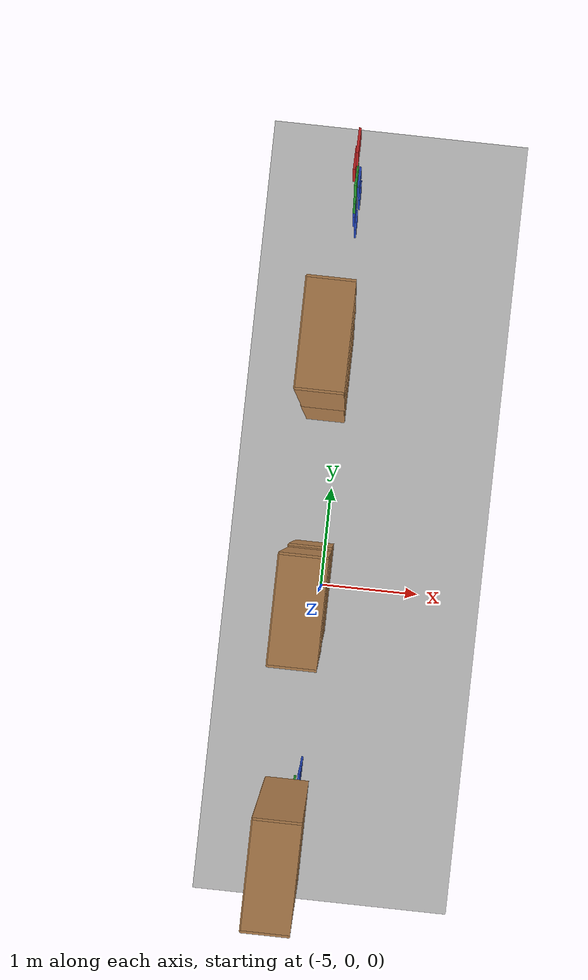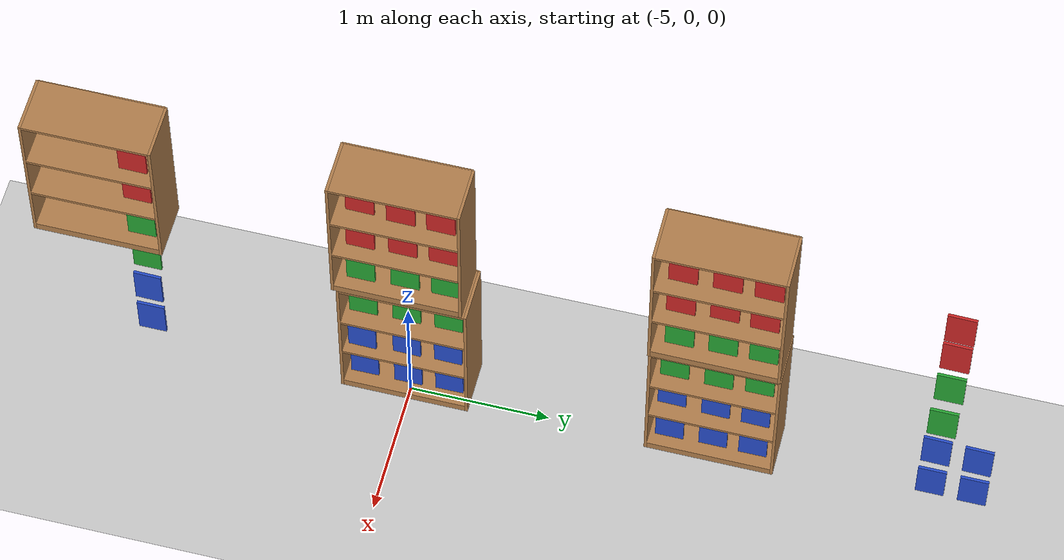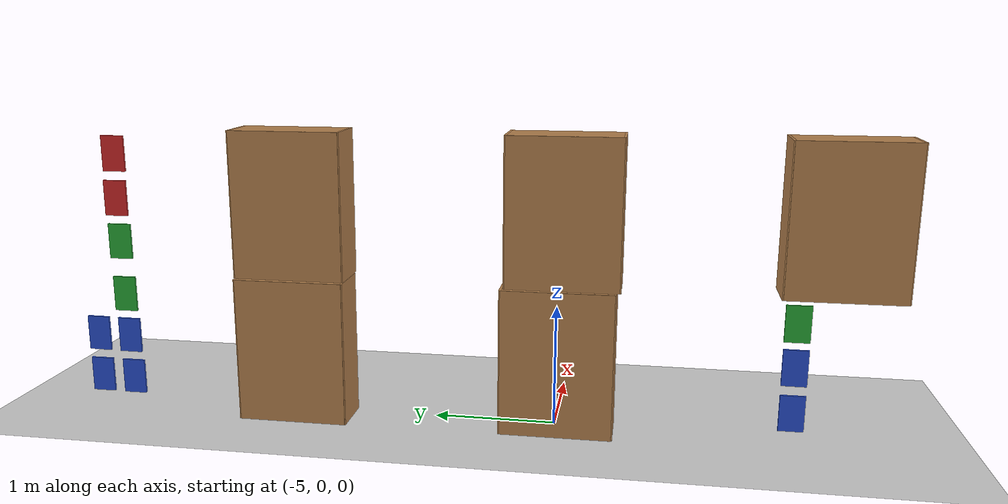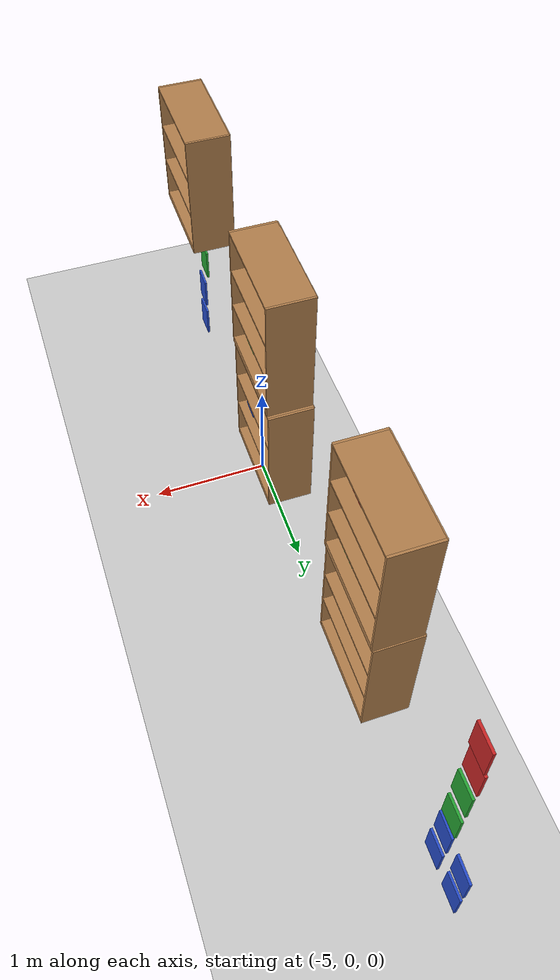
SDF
<sdf version="1.6">
 <world name="default">
  <model name="ground_plane">
   <static>1</static>
   <link name="link">
    <collision name="collision">
     <geometry><plane><normal>0 0 1</normal><size>100 100</size></plane></geometry>
     <surface><friction><ode><mu>100</mu><mu2>50</mu2></ode></friction></surface>
    </collision>
    <visual name="visual">
     <cast_shadows>0</cast_shadows>
     <geometry><plane><normal>0 0 1</normal><size>100 100</size></plane></geometry>
     <material>
      <script><uri>file://media/materials/scripts/gazebo.material</uri><name>Gazebo/Grey</name></script>
     </material>
    </visual>
   </link>
  </model>
  <model name="bookshelf_0_clone_0">
   <static>1</static>
   <link name="link">
    <inertial><mass>1</mass></inertial>
    <collision name="back">
     <pose>0 0.005 0.6 0 -0 0</pose>
     <geometry><box><size>0.9 0.01 1.2</size></box></geometry>
    </collision>
    <visual name="visual1">
     <pose>0 0.005 0.6 0 -0 0</pose>
     <geometry><box><size>0.9 0.01 1.2</size></box></geometry>
     <material>
      <script><uri>file://media/materials/scripts/gazebo.material</uri><name>Gazebo/Wood</name></script>
     </material>
    </visual>
    <collision name="left_side">
     <pose>0.45 -0.195 0.6 0 -0 0</pose>
     <geometry><box><size>0.02 0.4 1.2</size></box></geometry>
    </collision>
    <visual name="visual2">
     <pose>0.45 -0.195 0.6 0 -0 0</pose>
     <geometry><box><size>0.02 0.4 1.2</size></box></geometry>
     <material>
      <script><uri>file://media/materials/scripts/gazebo.material</uri><name>Gazebo/Wood</name></script>
     </material>
    </visual>
    <collision name="right_side">
     <pose>-0.45 -0.195 0.6 0 -0 0</pose>
     <geometry><box><size>0.02 0.4 1.2</size></box></geometry>
    </collision>
    <visual name="visual3">
     <pose>-0.45 -0.195 0.6 0 -0 0</pose>
     <geometry><box><size>0.02 0.4 1.2</size></box></geometry>
     <material>
      <script><uri>file://media/materials/scripts/gazebo.material</uri><name>Gazebo/Wood</name></script>
     </material>
    </visual>
    <collision name="bottom">
     <pose>0 -0.195 0.03 0 -0 0</pose>
     <geometry><box><size>0.88 0.4 0.06</size></box></geometry>
    </collision>
    <visual name="visual4">
     <pose>0 -0.195 0.03 0 -0 0</pose>
     <geometry><box><size>0.88 0.4 0.06</size></box></geometry>
     <material>
      <script><uri>file://media/materials/scripts/gazebo.material</uri><name>Gazebo/Wood</name></script>
     </material>
    </visual>
    <collision name="top">
     <pose>0 -0.195 1.19 0 -0 0</pose>
     <geometry><box><size>0.88 0.4 0.02</size></box></geometry>
    </collision>
    <visual name="visual5">
     <pose>0 -0.195 1.19 0 -0 0</pose>
     <geometry><box><size>0.88 0.4 0.02</size></box></geometry>
     <material>
      <script><uri>file://media/materials/scripts/gazebo.material</uri><name>Gazebo/Wood</name></script>
     </material>
    </visual>
    <collision name="low_shelf">
     <pose>0 -0.195 0.43 0 -0 0</pose>
     <geometry><box><size>0.88 0.4 0.02</size></box></geometry>
    </collision>
    <visual name="visual6">
     <pose>0 -0.195 0.43 0 -0 0</pose>
     <geometry><box><size>0.88 0.4 0.02</size></box></geometry>
     <material>
      <script><uri>file://media/materials/scripts/gazebo.material</uri><name>Gazebo/Wood</name></script>
     </material>
    </visual>
    <collision name="high_shelf">
     <pose>0 -0.195 0.8 0 -0 0</pose>
     <geometry><box><size>0.88 0.4 0.02</size></box></geometry>
    </collision>
    <visual name="visual7">
     <pose>0 -0.195 0.8 0 -0 0</pose>
     <geometry><box><size>0.88 0.4 0.02</size></box></geometry>
     <material>
      <script><uri>file://media/materials/scripts/gazebo.material</uri><name>Gazebo/Wood</name></script>
     </material>
    </visual>
   </link>
   <pose>-5.30935 -0.025093 0 0 -0 1.5697</pose>
  </model>
  <model name="bookshelf_0_clone_0_clone">
   <static>1</static>
   <link name="link">
    <inertial><mass>1</mass></inertial>
    <collision name="back">
     <pose>0 0.005 0.6 0 -0 0</pose>
     <geometry><box><size>0.9 0.01 1.2</size></box></geometry>
    </collision>
    <visual name="visual1">
     <pose>0 0.005 0.6 0 -0 0</pose>
     <geometry><box><size>0.9 0.01 1.2</size></box></geometry>
     <material>
      <script><uri>file://media/materials/scripts/gazebo.material</uri><name>Gazebo/Wood</name></script>
     </material>
    </visual>
    <collision name="left_side">
     <pose>0.45 -0.195 0.6 0 -0 0</pose>
     <geometry><box><size>0.02 0.4 1.2</size></box></geometry>
    </collision>
    <visual name="visual2">
     <pose>0.45 -0.195 0.6 0 -0 0</pose>
     <geometry><box><size>0.02 0.4 1.2</size></box></geometry>
     <material>
      <script><uri>file://media/materials/scripts/gazebo.material</uri><name>Gazebo/Wood</name></script>
     </material>
    </visual>
    <collision name="right_side">
     <pose>-0.45 -0.195 0.6 0 -0 0</pose>
     <geometry><box><size>0.02 0.4 1.2</size></box></geometry>
    </collision>
    <visual name="visual3">
     <pose>-0.45 -0.195 0.6 0 -0 0</pose>
     <geometry><box><size>0.02 0.4 1.2</size></box></geometry>
     <material>
      <script><uri>file://media/materials/scripts/gazebo.material</uri><name>Gazebo/Wood</name></script>
     </material>
    </visual>
    <collision name="bottom">
     <pose>0 -0.195 0.03 0 -0 0</pose>
     <geometry><box><size>0.88 0.4 0.06</size></box></geometry>
    </collision>
    <visual name="visual4">
     <pose>0 -0.195 0.03 0 -0 0</pose>
     <geometry><box><size>0.88 0.4 0.06</size></box></geometry>
     <material>
      <script><uri>file://media/materials/scripts/gazebo.material</uri><name>Gazebo/Wood</name></script>
     </material>
    </visual>
    <collision name="top">
     <pose>0 -0.195 1.19 0 -0 0</pose>
     <geometry><box><size>0.88 0.4 0.02</size></box></geometry>
    </collision>
    <visual name="visual5">
     <pose>0 -0.195 1.19 0 -0 0</pose>
     <geometry><box><size>0.88 0.4 0.02</size></box></geometry>
     <material>
      <script><uri>file://media/materials/scripts/gazebo.material</uri><name>Gazebo/Wood</name></script>
     </material>
    </visual>
    <collision name="low_shelf">
     <pose>0 -0.195 0.43 0 -0 0</pose>
     <geometry><box><size>0.88 0.4 0.02</size></box></geometry>
    </collision>
    <visual name="visual6">
     <pose>0 -0.195 0.43 0 -0 0</pose>
     <geometry><box><size>0.88 0.4 0.02</size></box></geometry>
     <material>
      <script><uri>file://media/materials/scripts/gazebo.material</uri><name>Gazebo/Wood</name></script>
     </material>
    </visual>
    <collision name="high_shelf">
     <pose>0 -0.195 0.8 0 -0 0</pose>
     <geometry><box><size>0.88 0.4 0.02</size></box></geometry>
    </collision>
    <visual name="visual7">
     <pose>0 -0.195 0.8 0 -0 0</pose>
     <geometry><box><size>0.88 0.4 0.02</size></box></geometry>
     <material>
      <script><uri>file://media/materials/scripts/gazebo.material</uri><name>Gazebo/Wood</name></script>
     </material>
    </visual>
   </link>
   <pose>-5.33454 2.15943 0 0 -0 1.5697</pose>
  </model>
  <model name="bookshelf_0_clone_0_clone_1_clone_0">
   <static>1</static>
   <link name="link">
    <inertial><mass>1</mass></inertial>
    <collision name="back">
     <pose>0 0.005 0.6 0 -0 0</pose>
     <geometry><box><size>0.9 0.01 1.2</size></box></geometry>
    </collision>
    <visual name="visual1">
     <pose>0 0.005 0.6 0 -0 0</pose>
     <geometry><box><size>0.9 0.01 1.2</size></box></geometry>
     <material>
      <script><uri>file://media/materials/scripts/gazebo.material</uri><name>Gazebo/Wood</name></script>
     </material>
    </visual>
    <collision name="left_side">
     <pose>0.45 -0.195 0.6 0 -0 0</pose>
     <geometry><box><size>0.02 0.4 1.2</size></box></geometry>
    </collision>
    <visual name="visual2">
     <pose>0.45 -0.195 0.6 0 -0 0</pose>
     <geometry><box><size>0.02 0.4 1.2</size></box></geometry>
     <material>
      <script><uri>file://media/materials/scripts/gazebo.material</uri><name>Gazebo/Wood</name></script>
     </material>
    </visual>
    <collision name="right_side">
     <pose>-0.45 -0.195 0.6 0 -0 0</pose>
     <geometry><box><size>0.02 0.4 1.2</size></box></geometry>
    </collision>
    <visual name="visual3">
     <pose>-0.45 -0.195 0.6 0 -0 0</pose>
     <geometry><box><size>0.02 0.4 1.2</size></box></geometry>
     <material>
      <script><uri>file://media/materials/scripts/gazebo.material</uri><name>Gazebo/Wood</name></script>
     </material>
    </visual>
    <collision name="bottom">
     <pose>0 -0.195 0.03 0 -0 0</pose>
     <geometry><box><size>0.88 0.4 0.06</size></box></geometry>
    </collision>
    <visual name="visual4">
     <pose>0 -0.195 0.03 0 -0 0</pose>
     <geometry><box><size>0.88 0.4 0.06</size></box></geometry>
     <material>
      <script><uri>file://media/materials/scripts/gazebo.material</uri><name>Gazebo/Wood</name></script>
     </material>
    </visual>
    <collision name="top">
     <pose>0 -0.195 1.19 0 -0 0</pose>
     <geometry><box><size>0.88 0.4 0.02</size></box></geometry>
    </collision>
    <visual name="visual5">
     <pose>0 -0.195 1.19 0 -0 0</pose>
     <geometry><box><size>0.88 0.4 0.02</size></box></geometry>
     <material>
      <script><uri>file://media/materials/scripts/gazebo.material</uri><name>Gazebo/Wood</name></script>
     </material>
    </visual>
    <collision name="low_shelf">
     <pose>0 -0.195 0.43 0 -0 0</pose>
     <geometry><box><size>0.88 0.4 0.02</size></box></geometry>
    </collision>
    <visual name="visual6">
     <pose>0 -0.195 0.43 0 -0 0</pose>
     <geometry><box><size>0.88 0.4 0.02</size></box></geometry>
     <material>
      <script><uri>file://media/materials/scripts/gazebo.material</uri><name>Gazebo/Wood</name></script>
     </material>
    </visual>
    <collision name="high_shelf">
     <pose>0 -0.195 0.8 0 -0 0</pose>
     <geometry><box><size>0.88 0.4 0.02</size></box></geometry>
    </collision>
    <visual name="visual7">
     <pose>0 -0.195 0.8 0 -0 0</pose>
     <geometry><box><size>0.88 0.4 0.02</size></box></geometry>
     <material>
      <script><uri>file://media/materials/scripts/gazebo.material</uri><name>Gazebo/Wood</name></script>
     </material>
    </visual>
   </link>
   <pose>-5.32334 2.15341 1.21067 0 -0 1.5697</pose>
  </model>
  <model name="bookshelf_0_clone_0_clone_1_clone_0_clone">
   <static>1</static>
   <link name="link">
    <inertial><mass>1</mass></inertial>
    <collision name="back">
     <pose>0 0.005 0.6 0 -0 0</pose>
     <geometry><box><size>0.9 0.01 1.2</size></box></geometry>
    </collision>
    <visual name="visual1">
     <pose>0 0.005 0.6 0 -0 0</pose>
     <geometry><box><size>0.9 0.01 1.2</size></box></geometry>
     <material>
      <script><uri>file://media/materials/scripts/gazebo.material</uri><name>Gazebo/Wood</name></script>
     </material>
    </visual>
    <collision name="left_side">
     <pose>0.45 -0.195 0.6 0 -0 0</pose>
     <geometry><box><size>0.02 0.4 1.2</size></box></geometry>
    </collision>
    <visual name="visual2">
     <pose>0.45 -0.195 0.6 0 -0 0</pose>
     <geometry><box><size>0.02 0.4 1.2</size></box></geometry>
     <material>
      <script><uri>file://media/materials/scripts/gazebo.material</uri><name>Gazebo/Wood</name></script>
     </material>
    </visual>
    <collision name="right_side">
     <pose>-0.45 -0.195 0.6 0 -0 0</pose>
     <geometry><box><size>0.02 0.4 1.2</size></box></geometry>
    </collision>
    <visual name="visual3">
     <pose>-0.45 -0.195 0.6 0 -0 0</pose>
     <geometry><box><size>0.02 0.4 1.2</size></box></geometry>
     <material>
      <script><uri>file://media/materials/scripts/gazebo.material</uri><name>Gazebo/Wood</name></script>
     </material>
    </visual>
    <collision name="bottom">
     <pose>0 -0.195 0.03 0 -0 0</pose>
     <geometry><box><size>0.88 0.4 0.06</size></box></geometry>
    </collision>
    <visual name="visual4">
     <pose>0 -0.195 0.03 0 -0 0</pose>
     <geometry><box><size>0.88 0.4 0.06</size></box></geometry>
     <material>
      <script><uri>file://media/materials/scripts/gazebo.material</uri><name>Gazebo/Wood</name></script>
     </material>
    </visual>
    <collision name="top">
     <pose>0 -0.195 1.19 0 -0 0</pose>
     <geometry><box><size>0.88 0.4 0.02</size></box></geometry>
    </collision>
    <visual name="visual5">
     <pose>0 -0.195 1.19 0 -0 0</pose>
     <geometry><box><size>0.88 0.4 0.02</size></box></geometry>
     <material>
      <script><uri>file://media/materials/scripts/gazebo.material</uri><name>Gazebo/Wood</name></script>
     </material>
    </visual>
    <collision name="low_shelf">
     <pose>0 -0.195 0.43 0 -0 0</pose>
     <geometry><box><size>0.88 0.4 0.02</size></box></geometry>
    </collision>
    <visual name="visual6">
     <pose>0 -0.195 0.43 0 -0 0</pose>
     <geometry><box><size>0.88 0.4 0.02</size></box></geometry>
     <material>
      <script><uri>file://media/materials/scripts/gazebo.material</uri><name>Gazebo/Wood</name></script>
     </material>
    </visual>
    <collision name="high_shelf">
     <pose>0 -0.195 0.8 0 -0 0</pose>
     <geometry><box><size>0.88 0.4 0.02</size></box></geometry>
    </collision>
    <visual name="visual7">
     <pose>0 -0.195 0.8 0 -0 0</pose>
     <geometry><box><size>0.88 0.4 0.02</size></box></geometry>
     <material>
      <script><uri>file://media/materials/scripts/gazebo.material</uri><name>Gazebo/Wood</name></script>
     </material>
    </visual>
   </link>
   <pose>-5.30537 -0.057137 1.21067 0 -0 1.5697</pose>
  </model>
  <model name="bookshelf_0_clone_0_clone_1_clone_0_clone_0">
   <static>1</static>
   <link name="link">
    <inertial><mass>1</mass></inertial>
    <collision name="back">
     <pose>0 0.005 0.6 0 -0 0</pose>
     <geometry><box><size>0.9 0.01 1.2</size></box></geometry>
    </collision>
    <visual name="visual1">
     <pose>0 0.005 0.6 0 -0 0</pose>
     <geometry><box><size>0.9 0.01 1.2</size></box></geometry>
     <material>
      <script><uri>file://media/materials/scripts/gazebo.material</uri><name>Gazebo/Wood</name></script>
     </material>
    </visual>
    <collision name="left_side">
     <pose>0.45 -0.195 0.6 0 -0 0</pose>
     <geometry><box><size>0.02 0.4 1.2</size></box></geometry>
    </collision>
    <visual name="visual2">
     <pose>0.45 -0.195 0.6 0 -0 0</pose>
     <geometry><box><size>0.02 0.4 1.2</size></box></geometry>
     <material>
      <script><uri>file://media/materials/scripts/gazebo.material</uri><name>Gazebo/Wood</name></script>
     </material>
    </visual>
    <collision name="right_side">
     <pose>-0.45 -0.195 0.6 0 -0 0</pose>
     <geometry><box><size>0.02 0.4 1.2</size></box></geometry>
    </collision>
    <visual name="visual3">
     <pose>-0.45 -0.195 0.6 0 -0 0</pose>
     <geometry><box><size>0.02 0.4 1.2</size></box></geometry>
     <material>
      <script><uri>file://media/materials/scripts/gazebo.material</uri><name>Gazebo/Wood</name></script>
     </material>
    </visual>
    <collision name="bottom">
     <pose>0 -0.195 0.03 0 -0 0</pose>
     <geometry><box><size>0.88 0.4 0.06</size></box></geometry>
    </collision>
    <visual name="visual4">
     <pose>0 -0.195 0.03 0 -0 0</pose>
     <geometry><box><size>0.88 0.4 0.06</size></box></geometry>
     <material>
      <script><uri>file://media/materials/scripts/gazebo.material</uri><name>Gazebo/Wood</name></script>
     </material>
    </visual>
    <collision name="top">
     <pose>0 -0.195 1.19 0 -0 0</pose>
     <geometry><box><size>0.88 0.4 0.02</size></box></geometry>
    </collision>
    <visual name="visual5">
     <pose>0 -0.195 1.19 0 -0 0</pose>
     <geometry><box><size>0.88 0.4 0.02</size></box></geometry>
     <material>
      <script><uri>file://media/materials/scripts/gazebo.material</uri><name>Gazebo/Wood</name></script>
     </material>
    </visual>
    <collision name="low_shelf">
     <pose>0 -0.195 0.43 0 -0 0</pose>
     <geometry><box><size>0.88 0.4 0.02</size></box></geometry>
    </collision>
    <visual name="visual6">
     <pose>0 -0.195 0.43 0 -0 0</pose>
     <geometry><box><size>0.88 0.4 0.02</size></box></geometry>
     <material>
      <script><uri>file://media/materials/scripts/gazebo.material</uri><name>Gazebo/Wood</name></script>
     </material>
    </visual>
    <collision name="high_shelf">
     <pose>0 -0.195 0.8 0 -0 0</pose>
     <geometry><box><size>0.88 0.4 0.02</size></box></geometry>
    </collision>
    <visual name="visual7">
     <pose>0 -0.195 0.8 0 -0 0</pose>
     <geometry><box><size>0.88 0.4 0.02</size></box></geometry>
     <material>
      <script><uri>file://media/materials/scripts/gazebo.material</uri><name>Gazebo/Wood</name></script>
     </material>
    </visual>
   </link>
   <pose>-5.28921 -2.17241 1.21067 0 -0 1.5697</pose>
  </model>
  <model name="bluecube_0_clone_clone_9_clone_11_clone_clone_11">
   <static>1</static>
   <link name="link">
    <pose>0 0 0.21 0 -0 0</pose>
    <collision name="collision"><geometry><box><size>0.2 0.02 0.3</size></box></geometry></collision>
    <visual name="visual">
     <geometry><box><size>0.2 0.02 0.3</size></box></geometry>
     <material>
      <script><uri>file://media/materials/scripts/gazebo.material</uri><name>Gazebo/Blue</name></script>
     </material>
    </visual>
   </link>
   <pose>-5.0024 -1.89029 0 0 -0 1.57146</pose>
  </model>
  <model name="bluecube_0_clone_clone_9_clone_11_clone_clone_12">
   <static>1</static>
   <link name="link">
    <pose>0 0 0.21 0 -0 0</pose>
    <collision name="collision"><geometry><box><size>0.2 0.02 0.3</size></box></geometry></collision>
    <visual name="visual">
     <geometry><box><size>0.2 0.02 0.3</size></box></geometry>
     <material>
      <script><uri>file://media/materials/scripts/gazebo.material</uri><name>Gazebo/Blue</name></script>
     </material>
    </visual>
   </link>
   <pose>-5.02173 -0.335053 0 0 -0 1.57146</pose>
  </model>
  <model name="bluecube_0_clone_clone_9_clone_11_clone_clone_13">
   <static>1</static>
   <link name="link">
    <pose>0 0 0.21 0 -0 0</pose>
    <collision name="collision"><geometry><box><size>0.2 0.02 0.3</size></box></geometry></collision>
    <visual name="visual">
     <geometry><box><size>0.2 0.02 0.3</size></box></geometry>
     <material>
      <script><uri>file://media/materials/scripts/gazebo.material</uri><name>Gazebo/Blue</name></script>
     </material>
    </visual>
   </link>
   <pose>-5.01812 -0.019743 0 0 -0 1.57146</pose>
  </model>
  <model name="bluecube_0_clone_clone_9_clone_11_clone_clone_14">
   <static>1</static>
   <link name="link">
    <pose>0 0 0.21 0 -0 0</pose>
    <collision name="collision"><geometry><box><size>0.2 0.02 0.3</size></box></geometry></collision>
    <visual name="visual">
     <geometry><box><size>0.2 0.02 0.3</size></box></geometry>
     <material>
      <script><uri>file://media/materials/scripts/gazebo.material</uri><name>Gazebo/Blue</name></script>
     </material>
    </visual>
   </link>
   <pose>-5.0247 0.276606 0 0 -0 1.57146</pose>
  </model>
  <model name="bluecube_0_clone_clone_9_clone_11_clone_clone_15">
   <static>1</static>
   <link name="link">
    <pose>0 0 0.21 0 -0 0</pose>
    <collision name="collision"><geometry><box><size>0.2 0.02 0.3</size></box></geometry></collision>
    <visual name="visual">
     <geometry><box><size>0.2 0.02 0.3</size></box></geometry>
     <material>
      <script><uri>file://media/materials/scripts/gazebo.material</uri><name>Gazebo/Blue</name></script>
     </material>
    </visual>
   </link>
   <pose>-5.03969 1.85817 0 0 -0 1.57146</pose>
  </model>
  <model name="bluecube_0_clone_clone_9_clone_11_clone_clone_16">
   <static>1</static>
   <link name="link">
    <pose>0 0 0.21 0 -0 0</pose>
    <collision name="collision"><geometry><box><size>0.2 0.02 0.3</size></box></geometry></collision>
    <visual name="visual">
     <geometry><box><size>0.2 0.02 0.3</size></box></geometry>
     <material>
      <script><uri>file://media/materials/scripts/gazebo.material</uri><name>Gazebo/Blue</name></script>
     </material>
    </visual>
   </link>
   <pose>-5.04505 2.16746 0 0 -0 1.57146</pose>
  </model>
  <model name="bluecube_0_clone_clone_9_clone_11_clone_clone_17">
   <static>1</static>
   <link name="link">
    <pose>0 0 0.21 0 -0 0</pose>
    <collision name="collision"><geometry><box><size>0.2 0.02 0.3</size></box></geometry></collision>
    <visual name="visual">
     <geometry><box><size>0.2 0.02 0.3</size></box></geometry>
     <material>
      <script><uri>file://media/materials/scripts/gazebo.material</uri><name>Gazebo/Blue</name></script>
     </material>
    </visual>
   </link>
   <pose>-5.04087 2.45195 0 0 -0 1.57146</pose>
  </model>
  <model name="bluecube_0_clone_clone_9_clone_11_clone_clone_18">
   <static>1</static>
   <link name="link">
    <pose>0 0 0.21 0 -0 0</pose>
    <collision name="collision"><geometry><box><size>0.2 0.02 0.3</size></box></geometry></collision>
    <visual name="visual">
     <geometry><box><size>0.2 0.02 0.3</size></box></geometry>
     <material>
      <script><uri>file://media/materials/scripts/gazebo.material</uri><name>Gazebo/Blue</name></script>
     </material>
    </visual>
   </link>
   <pose>-5.03935 3.70712 0 0 -0 1.57146</pose>
  </model>
  <model name="bluecube_0_clone_clone_9_clone_11_clone_clone_19">
   <static>1</static>
   <link name="link">
    <pose>0 0 0.21 0 -0 0</pose>
    <collision name="collision"><geometry><box><size>0.2 0.02 0.3</size></box></geometry></collision>
    <visual name="visual">
     <geometry><box><size>0.2 0.02 0.3</size></box></geometry>
     <material>
      <script><uri>file://media/materials/scripts/gazebo.material</uri><name>Gazebo/Blue</name></script>
     </material>
    </visual>
   </link>
   <pose>-5.0324 4.00447 0 0 -0 1.57146</pose>
  </model>
  <model name="bluecube_0_clone_clone_10_clone_clone_21_clone_clone_12">
   <static>1</static>
   <link name="link">
    <pose>0 0 0.21 0 -0 0</pose>
    <collision name="collision"><geometry><box><size>0.2 0.02 0.3</size></box></geometry></collision>
    <visual name="visual">
     <geometry><box><size>0.2 0.02 0.3</size></box></geometry>
     <material>
      <script><uri>file://media/materials/scripts/gazebo.material</uri><name>Gazebo/Blue</name></script>
     </material>
    </visual>
   </link>
   <pose>-5.00479 -1.88869 0.38097 0 -0 1.5507</pose>
  </model>
  <model name="bluecube_0_clone_clone_10_clone_clone_21_clone_clone_13">
   <static>1</static>
   <link name="link">
    <pose>0 0 0.21 0 -0 0</pose>
    <collision name="collision"><geometry><box><size>0.2 0.02 0.3</size></box></geometry></collision>
    <visual name="visual">
     <geometry><box><size>0.2 0.02 0.3</size></box></geometry>
     <material>
      <script><uri>file://media/materials/scripts/gazebo.material</uri><name>Gazebo/Blue</name></script>
     </material>
    </visual>
   </link>
   <pose>-4.99981 -0.338779 0.38097 0 -0 1.5507</pose>
  </model>
  <model name="bluecube_0_clone_clone_10_clone_clone_21_clone_clone_14">
   <static>1</static>
   <link name="link">
    <pose>0 0 0.21 0 -0 0</pose>
    <collision name="collision"><geometry><box><size>0.2 0.02 0.3</size></box></geometry></collision>
    <visual name="visual">
     <geometry><box><size>0.2 0.02 0.3</size></box></geometry>
     <material>
      <script><uri>file://media/materials/scripts/gazebo.material</uri><name>Gazebo/Blue</name></script>
     </material>
    </visual>
   </link>
   <pose>-5.01572 -0.022283 0.38097 0 -0 1.5507</pose>
  </model>
  <model name="bluecube_0_clone_clone_10_clone_clone_21_clone_clone_15">
   <static>1</static>
   <link name="link">
    <pose>0 0 0.21 0 -0 0</pose>
    <collision name="collision"><geometry><box><size>0.2 0.02 0.3</size></box></geometry></collision>
    <visual name="visual">
     <geometry><box><size>0.2 0.02 0.3</size></box></geometry>
     <material>
      <script><uri>file://media/materials/scripts/gazebo.material</uri><name>Gazebo/Blue</name></script>
     </material>
    </visual>
   </link>
   <pose>-5.01957 0.273785 0.38097 0 -0 1.5507</pose>
  </model>
  <model name="bluecube_0_clone_clone_10_clone_clone_21_clone_clone_16">
   <static>1</static>
   <link name="link">
    <pose>0 0 0.21 0 -0 0</pose>
    <collision name="collision"><geometry><box><size>0.2 0.02 0.3</size></box></geometry></collision>
    <visual name="visual">
     <geometry><box><size>0.2 0.02 0.3</size></box></geometry>
     <material>
      <script><uri>file://media/materials/scripts/gazebo.material</uri><name>Gazebo/Blue</name></script>
     </material>
    </visual>
   </link>
   <pose>-5.06971 1.85784 0.38097 0 -0 1.5507</pose>
  </model>
  <model name="bluecube_0_clone_clone_10_clone_clone_21_clone_clone_17">
   <static>1</static>
   <link name="link">
    <pose>0 0 0.21 0 -0 0</pose>
    <collision name="collision"><geometry><box><size>0.2 0.02 0.3</size></box></geometry></collision>
    <visual name="visual">
     <geometry><box><size>0.2 0.02 0.3</size></box></geometry>
     <material>
      <script><uri>file://media/materials/scripts/gazebo.material</uri><name>Gazebo/Blue</name></script>
     </material>
    </visual>
   </link>
   <pose>-5.05351 2.17009 0.38097 0 -0 1.5507</pose>
  </model>
  <model name="bluecube_0_clone_clone_10_clone_clone_21_clone_clone_18">
   <static>1</static>
   <link name="link">
    <pose>0 0 0.21 0 -0 0</pose>
    <collision name="collision"><geometry><box><size>0.2 0.02 0.3</size></box></geometry></collision>
    <visual name="visual">
     <geometry><box><size>0.2 0.02 0.3</size></box></geometry>
     <material>
      <script><uri>file://media/materials/scripts/gazebo.material</uri><name>Gazebo/Blue</name></script>
     </material>
    </visual>
   </link>
   <pose>-5.04918 2.45238 0.38097 0 -0 1.5507</pose>
  </model>
  <model name="bluecube_0_clone_clone_10_clone_clone_21_clone_clone_19">
   <static>1</static>
   <link name="link">
    <pose>0 0 0.21 0 -0 0</pose>
    <collision name="collision"><geometry><box><size>0.2 0.02 0.3</size></box></geometry></collision>
    <visual name="visual">
     <geometry><box><size>0.2 0.02 0.3</size></box></geometry>
     <material>
      <script><uri>file://media/materials/scripts/gazebo.material</uri><name>Gazebo/Blue</name></script>
     </material>
    </visual>
   </link>
   <pose>-5.0527 3.71226 0.38097 0 -0 1.5507</pose>
  </model>
  <model name="bluecube_0_clone_clone_10_clone_clone_21_clone_clone_20">
   <static>1</static>
   <link name="link">
    <pose>0 0 0.21 0 -0 0</pose>
    <collision name="collision"><geometry><box><size>0.2 0.02 0.3</size></box></geometry></collision>
    <visual name="visual">
     <geometry><box><size>0.2 0.02 0.3</size></box></geometry>
     <material>
      <script><uri>file://media/materials/scripts/gazebo.material</uri><name>Gazebo/Blue</name></script>
     </material>
    </visual>
   </link>
   <pose>-5.04038 4.00419 0.38097 0 -0 1.5507</pose>
  </model>
  <model name="greencube_clone_clone_22_clone_clone_12">
   <static>1</static>
   <link name="link">
    <pose>0 0 0.21 0 -0 0</pose>
    <collision name="collision"><geometry><box><size>0.2 0.02 0.3</size></box></geometry></collision>
    <visual name="visual">
     <geometry><box><size>0.2 0.02 0.3</size></box></geometry>
     <material>
      <script><uri>file://media/materials/scripts/gazebo.material</uri><name>Gazebo/Green</name></script>
     </material>
    </visual>
   </link>
   <pose>-5.03439 -1.88241 0.751098 0 -0 1.56837</pose>
  </model>
  <model name="greencube_clone_clone_22_clone_clone_13">
   <static>1</static>
   <link name="link">
    <pose>0 0 0.21 0 -0 0</pose>
    <collision name="collision"><geometry><box><size>0.2 0.02 0.3</size></box></geometry></collision>
    <visual name="visual">
     <geometry><box><size>0.2 0.02 0.3</size></box></geometry>
     <material>
      <script><uri>file://media/materials/scripts/gazebo.material</uri><name>Gazebo/Green</name></script>
     </material>
    </visual>
   </link>
   <pose>-5.04419 -0.332653 0.751098 0 -0 1.56837</pose>
  </model>
  <model name="greencube_clone_clone_22_clone_clone_14">
   <static>1</static>
   <link name="link">
    <pose>0 0 0.21 0 -0 0</pose>
    <collision name="collision"><geometry><box><size>0.2 0.02 0.3</size></box></geometry></collision>
    <visual name="visual">
     <geometry><box><size>0.2 0.02 0.3</size></box></geometry>
     <material>
      <script><uri>file://media/materials/scripts/gazebo.material</uri><name>Gazebo/Green</name></script>
     </material>
    </visual>
   </link>
   <pose>-5.05043 -0.024814 0.751098 0 -0 1.56837</pose>
  </model>
  <model name="greencube_clone_clone_22_clone_clone_15">
   <static>1</static>
   <link name="link">
    <pose>0 0 0.21 0 -0 0</pose>
    <collision name="collision"><geometry><box><size>0.2 0.02 0.3</size></box></geometry></collision>
    <visual name="visual">
     <geometry><box><size>0.2 0.02 0.3</size></box></geometry>
     <material>
      <script><uri>file://media/materials/scripts/gazebo.material</uri><name>Gazebo/Green</name></script>
     </material>
    </visual>
   </link>
   <pose>-5.05044 0.274786 0.751098 0 -0 1.56837</pose>
  </model>
  <model name="greencube_clone_clone_22_clone_clone_16">
   <static>1</static>
   <link name="link">
    <pose>0 0 0.21 0 -0 0</pose>
    <collision name="collision"><geometry><box><size>0.2 0.02 0.3</size></box></geometry></collision>
    <visual name="visual">
     <geometry><box><size>0.2 0.02 0.3</size></box></geometry>
     <material>
      <script><uri>file://media/materials/scripts/gazebo.material</uri><name>Gazebo/Green</name></script>
     </material>
    </visual>
   </link>
   <pose>-5.06553 1.86657 0.751098 0 -0 1.56837</pose>
  </model>
  <model name="greencube_clone_clone_22_clone_clone_17">
   <static>1</static>
   <link name="link">
    <pose>0 0 0.21 0 -0 0</pose>
    <collision name="collision"><geometry><box><size>0.2 0.02 0.3</size></box></geometry></collision>
    <visual name="visual">
     <geometry><box><size>0.2 0.02 0.3</size></box></geometry>
     <material>
      <script><uri>file://media/materials/scripts/gazebo.material</uri><name>Gazebo/Green</name></script>
     </material>
    </visual>
   </link>
   <pose>-5.0607 2.17603 0.751098 0 -0 1.56837</pose>
  </model>
  <model name="greencube_clone_clone_22_clone_clone_18">
   <static>1</static>
   <link name="link">
    <pose>0 0 0.21 0 -0 0</pose>
    <collision name="collision"><geometry><box><size>0.2 0.02 0.3</size></box></geometry></collision>
    <visual name="visual">
     <geometry><box><size>0.2 0.02 0.3</size></box></geometry>
     <material>
      <script><uri>file://media/materials/scripts/gazebo.material</uri><name>Gazebo/Green</name></script>
     </material>
    </visual>
   </link>
   <pose>-5.07307 2.4594 0.751098 0 -0 1.56837</pose>
  </model>
  <model name="greencube_clone_clone_22_clone_clone_19">
   <static>1</static>
   <link name="link">
    <pose>0 0 0.21 0 -0 0</pose>
    <collision name="collision"><geometry><box><size>0.2 0.02 0.3</size></box></geometry></collision>
    <visual name="visual">
     <geometry><box><size>0.2 0.02 0.3</size></box></geometry>
     <material>
      <script><uri>file://media/materials/scripts/gazebo.material</uri><name>Gazebo/Green</name></script>
     </material>
    </visual>
   </link>
   <pose>-5.05193 3.72555 0.751098 0 -0 1.56837</pose>
  </model>
  <model name="greencube_clone_clone_22_clone_clone_10_clone_clone_clone_0">
   <static>1</static>
   <link name="link">
    <pose>0 0 0.21 0 -0 0</pose>
    <collision name="collision"><geometry><box><size>0.2 0.02 0.3</size></box></geometry></collision>
    <visual name="visual">
     <geometry><box><size>0.2 0.02 0.3</size></box></geometry>
     <material>
      <script><uri>file://media/materials/scripts/gazebo.material</uri><name>Gazebo/Green</name></script>
     </material>
    </visual>
   </link>
   <pose>-5.00224 -1.87916 1.21098 0 -0 1.56837</pose>
  </model>
  <model name="greencube_clone_clone_22_clone_clone_10_clone_clone_clone_1">
   <static>1</static>
   <link name="link">
    <pose>0 0 0.21 0 -0 0</pose>
    <collision name="collision"><geometry><box><size>0.2 0.02 0.3</size></box></geometry></collision>
    <visual name="visual">
     <geometry><box><size>0.2 0.02 0.3</size></box></geometry>
     <material>
      <script><uri>file://media/materials/scripts/gazebo.material</uri><name>Gazebo/Green</name></script>
     </material>
    </visual>
   </link>
   <pose>-5.01706 -0.329688 1.21098 0 -0 1.56837</pose>
  </model>
  <model name="greencube_clone_clone_22_clone_clone_10_clone_clone_clone_2">
   <static>1</static>
   <link name="link">
    <pose>0 0 0.21 0 -0 0</pose>
    <collision name="collision"><geometry><box><size>0.2 0.02 0.3</size></box></geometry></collision>
    <visual name="visual">
     <geometry><box><size>0.2 0.02 0.3</size></box></geometry>
     <material>
      <script><uri>file://media/materials/scripts/gazebo.material</uri><name>Gazebo/Green</name></script>
     </material>
    </visual>
   </link>
   <pose>-5.02811 -0.020723 1.21098 0 -0 1.56837</pose>
  </model>
  <model name="greencube_clone_clone_22_clone_clone_10_clone_clone_clone_3">
   <static>1</static>
   <link name="link">
    <pose>0 0 0.21 0 -0 0</pose>
    <collision name="collision"><geometry><box><size>0.2 0.02 0.3</size></box></geometry></collision>
    <visual name="visual">
     <geometry><box><size>0.2 0.02 0.3</size></box></geometry>
     <material>
      <script><uri>file://media/materials/scripts/gazebo.material</uri><name>Gazebo/Green</name></script>
     </material>
    </visual>
   </link>
   <pose>-5.0305 0.264272 1.21098 0 -0 1.56837</pose>
  </model>
  <model name="greencube_clone_clone_22_clone_clone_10_clone_clone_clone_4">
   <static>1</static>
   <link name="link">
    <pose>0 0 0.21 0 -0 0</pose>
    <collision name="collision"><geometry><box><size>0.2 0.02 0.3</size></box></geometry></collision>
    <visual name="visual">
     <geometry><box><size>0.2 0.02 0.3</size></box></geometry>
     <material>
      <script><uri>file://media/materials/scripts/gazebo.material</uri><name>Gazebo/Green</name></script>
     </material>
    </visual>
   </link>
   <pose>-5.0376 1.89055 1.21098 0 -0 1.56837</pose>
  </model>
  <model name="greencube_clone_clone_22_clone_clone_10_clone_clone_clone_5">
   <static>1</static>
   <link name="link">
    <pose>0 0 0.21 0 -0 0</pose>
    <collision name="collision"><geometry><box><size>0.2 0.02 0.3</size></box></geometry></collision>
    <visual name="visual">
     <geometry><box><size>0.2 0.02 0.3</size></box></geometry>
     <material>
      <script><uri>file://media/materials/scripts/gazebo.material</uri><name>Gazebo/Green</name></script>
     </material>
    </visual>
   </link>
   <pose>-5.04214 2.1908 1.21098 0 -0 1.56837</pose>
  </model>
  <model name="greencube_clone_clone_22_clone_clone_10_clone_clone_clone_6">
   <static>1</static>
   <link name="link">
    <pose>0 0 0.21 0 -0 0</pose>
    <collision name="collision"><geometry><box><size>0.2 0.02 0.3</size></box></geometry></collision>
    <visual name="visual">
     <geometry><box><size>0.2 0.02 0.3</size></box></geometry>
     <material>
      <script><uri>file://media/materials/scripts/gazebo.material</uri><name>Gazebo/Green</name></script>
     </material>
    </visual>
   </link>
   <pose>-5.04495 2.47085 1.21098 0 -0 1.56837</pose>
  </model>
  <model name="greencube_clone_clone_22_clone_clone_10_clone_clone_clone_7">
   <static>1</static>
   <link name="link">
    <pose>0 0 0.21 0 -0 0</pose>
    <collision name="collision"><geometry><box><size>0.2 0.02 0.3</size></box></geometry></collision>
    <visual name="visual">
     <geometry><box><size>0.2 0.02 0.3</size></box></geometry>
     <material>
      <script><uri>file://media/materials/scripts/gazebo.material</uri><name>Gazebo/Green</name></script>
     </material>
    </visual>
   </link>
   <pose>-5.04419 3.73788 1.21098 0 -0 1.56837</pose>
  </model>
  <model name="redcube_clone_clone_22_clone_clone_0">
   <static>1</static>
   <link name="link">
    <pose>0 0 0.21 0 -0 0</pose>
    <collision name="collision"><geometry><box><size>0.2 0.02 0.3</size></box></geometry></collision>
    <visual name="visual">
     <geometry><box><size>0.2 0.02 0.3</size></box></geometry>
     <material>
      <script><uri>file://media/materials/scripts/gazebo.material</uri><name>Gazebo/Red</name></script>
     </material>
    </visual>
   </link>
   <pose>-5.02209 -1.89104 1.58534 0 -0 1.55372</pose>
  </model>
  <model name="redcube_clone_clone_22_clone_clone_1">
   <static>1</static>
   <link name="link">
    <pose>0 0 0.21 0 -0 0</pose>
    <collision name="collision"><geometry><box><size>0.2 0.02 0.3</size></box></geometry></collision>
    <visual name="visual">
     <geometry><box><size>0.2 0.02 0.3</size></box></geometry>
     <material>
      <script><uri>file://media/materials/scripts/gazebo.material</uri><name>Gazebo/Red</name></script>
     </material>
    </visual>
   </link>
   <pose>-5.03053 -0.326059 1.58534 0 -0 1.55372</pose>
  </model>
  <model name="redcube_clone_clone_22_clone_clone_2">
   <static>1</static>
   <link name="link">
    <pose>0 0 0.21 0 -0 0</pose>
    <collision name="collision"><geometry><box><size>0.2 0.02 0.3</size></box></geometry></collision>
    <visual name="visual">
     <geometry><box><size>0.2 0.02 0.3</size></box></geometry>
     <material>
      <script><uri>file://media/materials/scripts/gazebo.material</uri><name>Gazebo/Red</name></script>
     </material>
    </visual>
   </link>
   <pose>-5.03801 -0.031543 1.58534 0 -0 1.55372</pose>
  </model>
  <model name="redcube_clone_clone_22_clone_clone_3">
   <static>1</static>
   <link name="link">
    <pose>0 0 0.21 0 -0 0</pose>
    <collision name="collision"><geometry><box><size>0.2 0.02 0.3</size></box></geometry></collision>
    <visual name="visual">
     <geometry><box><size>0.2 0.02 0.3</size></box></geometry>
     <material>
      <script><uri>file://media/materials/scripts/gazebo.material</uri><name>Gazebo/Red</name></script>
     </material>
    </visual>
   </link>
   <pose>-5.03927 0.250241 1.58534 0 -0 1.55372</pose>
  </model>
  <model name="redcube_clone_clone_22_clone_clone_4">
   <static>1</static>
   <link name="link">
    <pose>0 0 0.21 0 -0 0</pose>
    <collision name="collision"><geometry><box><size>0.2 0.02 0.3</size></box></geometry></collision>
    <visual name="visual">
     <geometry><box><size>0.2 0.02 0.3</size></box></geometry>
     <material>
      <script><uri>file://media/materials/scripts/gazebo.material</uri><name>Gazebo/Red</name></script>
     </material>
    </visual>
   </link>
   <pose>-5.05118 1.88476 1.58534 0 -0 1.55372</pose>
  </model>
  <model name="redcube_clone_clone_22_clone_clone_5">
   <static>1</static>
   <link name="link">
    <pose>0 0 0.21 0 -0 0</pose>
    <collision name="collision"><geometry><box><size>0.2 0.02 0.3</size></box></geometry></collision>
    <visual name="visual">
     <geometry><box><size>0.2 0.02 0.3</size></box></geometry>
     <material>
      <script><uri>file://media/materials/scripts/gazebo.material</uri><name>Gazebo/Red</name></script>
     </material>
    </visual>
   </link>
   <pose>-5.06622 2.18262 1.58534 0 -0 1.55372</pose>
  </model>
  <model name="redcube_clone_clone_22_clone_clone_6">
   <static>1</static>
   <link name="link">
    <pose>0 0 0.21 0 -0 0</pose>
    <collision name="collision"><geometry><box><size>0.2 0.02 0.3</size></box></geometry></collision>
    <visual name="visual">
     <geometry><box><size>0.2 0.02 0.3</size></box></geometry>
     <material>
      <script><uri>file://media/materials/scripts/gazebo.material</uri><name>Gazebo/Red</name></script>
     </material>
    </visual>
   </link>
   <pose>-5.05412 2.45847 1.58534 0 -0 1.55372</pose>
  </model>
  <model name="redcube_clone_clone_22_clone_clone_7">
   <static>1</static>
   <link name="link">
    <pose>0 0 0.21 0 -0 0</pose>
    <collision name="collision"><geometry><box><size>0.2 0.02 0.3</size></box></geometry></collision>
    <visual name="visual">
     <geometry><box><size>0.2 0.02 0.3</size></box></geometry>
     <material>
      <script><uri>file://media/materials/scripts/gazebo.material</uri><name>Gazebo/Red</name></script>
     </material>
    </visual>
   </link>
   <pose>-5.05555 3.74344 1.58534 0 -0 1.55372</pose>
  </model>
  <model name="redcube_clone_clone_22_clone_clone_22_clone_clone_12">
   <static>1</static>
   <link name="link">
    <pose>0 0 0.21 0 -0 0</pose>
    <collision name="collision"><geometry><box><size>0.2 0.02 0.3</size></box></geometry></collision>
    <visual name="visual">
     <geometry><box><size>0.2 0.02 0.3</size></box></geometry>
     <material>
      <script><uri>file://media/materials/scripts/gazebo.material</uri><name>Gazebo/Red</name></script>
     </material>
    </visual>
   </link>
   <pose>-5.00835 -1.89192 1.95914 0 -0 1.55372</pose>
  </model>
  <model name="redcube_clone_clone_22_clone_clone_22_clone_clone_13">
   <static>1</static>
   <link name="link">
    <pose>0 0 0.21 0 -0 0</pose>
    <collision name="collision"><geometry><box><size>0.2 0.02 0.3</size></box></geometry></collision>
    <visual name="visual">
     <geometry><box><size>0.2 0.02 0.3</size></box></geometry>
     <material>
      <script><uri>file://media/materials/scripts/gazebo.material</uri><name>Gazebo/Red</name></script>
     </material>
    </visual>
   </link>
   <pose>-5.06482 -0.328233 1.95914 0 -0 1.55372</pose>
  </model>
  <model name="redcube_clone_clone_22_clone_clone_22_clone_clone_14">
   <static>1</static>
   <link name="link">
    <pose>0 0 0.21 0 -0 0</pose>
    <collision name="collision"><geometry><box><size>0.2 0.02 0.3</size></box></geometry></collision>
    <visual name="visual">
     <geometry><box><size>0.2 0.02 0.3</size></box></geometry>
     <material>
      <script><uri>file://media/materials/scripts/gazebo.material</uri><name>Gazebo/Red</name></script>
     </material>
    </visual>
   </link>
   <pose>-5.04406 -0.03926 1.95914 0 -0 1.55372</pose>
  </model>
  <model name="redcube_clone_clone_22_clone_clone_22_clone_clone_15">
   <static>1</static>
   <link name="link">
    <pose>0 0 0.21 0 -0 0</pose>
    <collision name="collision"><geometry><box><size>0.2 0.02 0.3</size></box></geometry></collision>
    <visual name="visual">
     <geometry><box><size>0.2 0.02 0.3</size></box></geometry>
     <material>
      <script><uri>file://media/materials/scripts/gazebo.material</uri><name>Gazebo/Red</name></script>
     </material>
    </visual>
   </link>
   <pose>-5.03852 0.239063 1.95914 0 -0 1.55372</pose>
  </model>
  <model name="redcube_clone_clone_22_clone_clone_22_clone_clone_16">
   <static>1</static>
   <link name="link">
    <pose>0 0 0.21 0 -0 0</pose>
    <collision name="collision"><geometry><box><size>0.2 0.02 0.3</size></box></geometry></collision>
    <visual name="visual">
     <geometry><box><size>0.2 0.02 0.3</size></box></geometry>
     <material>
      <script><uri>file://media/materials/scripts/gazebo.material</uri><name>Gazebo/Red</name></script>
     </material>
    </visual>
   </link>
   <pose>-5.05558 1.88739 1.95914 0 -0 1.55372</pose>
  </model>
  <model name="redcube_clone_clone_22_clone_clone_22_clone_clone_17">
   <static>1</static>
   <link name="link">
    <pose>0 0 0.21 0 -0 0</pose>
    <collision name="collision"><geometry><box><size>0.2 0.02 0.3</size></box></geometry></collision>
    <visual name="visual">
     <geometry><box><size>0.2 0.02 0.3</size></box></geometry>
     <material>
      <script><uri>file://media/materials/scripts/gazebo.material</uri><name>Gazebo/Red</name></script>
     </material>
    </visual>
   </link>
   <pose>-5.06242 2.1886 1.95914 0 -0 1.55372</pose>
  </model>
  <model name="redcube_clone_clone_22_clone_clone_22_clone_clone_18">
   <static>1</static>
   <link name="link">
    <pose>0 0 0.21 0 -0 0</pose>
    <collision name="collision"><geometry><box><size>0.2 0.02 0.3</size></box></geometry></collision>
    <visual name="visual">
     <geometry><box><size>0.2 0.02 0.3</size></box></geometry>
     <material>
      <script><uri>file://media/materials/scripts/gazebo.material</uri><name>Gazebo/Red</name></script>
     </material>
    </visual>
   </link>
   <pose>-5.05984 2.46991 1.95914 0 -0 1.55372</pose>
  </model>
  <model name="redcube_clone_clone_22_clone_clone_22_clone_clone_19">
   <static>1</static>
   <link name="link">
    <pose>0 0 0.21 0 -0 0</pose>
    <collision name="collision"><geometry><box><size>0.2 0.02 0.3</size></box></geometry></collision>
    <visual name="visual">
     <geometry><box><size>0.2 0.02 0.3</size></box></geometry>
     <material>
      <script><uri>file://media/materials/scripts/gazebo.material</uri><name>Gazebo/Red</name></script>
     </material>
    </visual>
   </link>
   <pose>-5.03182 3.74753 1.95914 0 -0 1.55372</pose>
  </model>
 </world>
</sdf>
